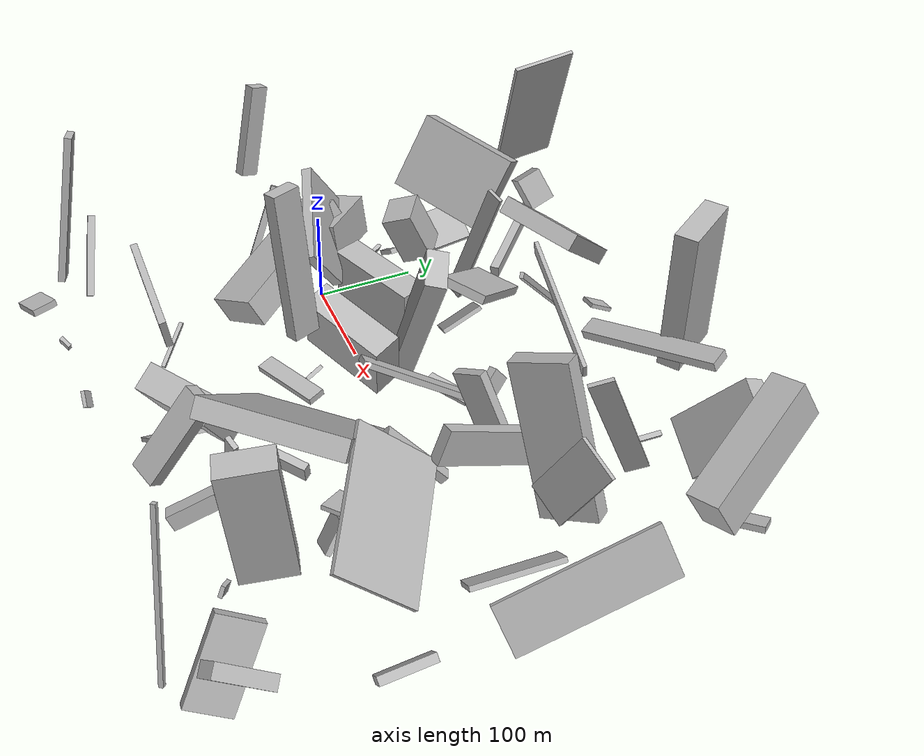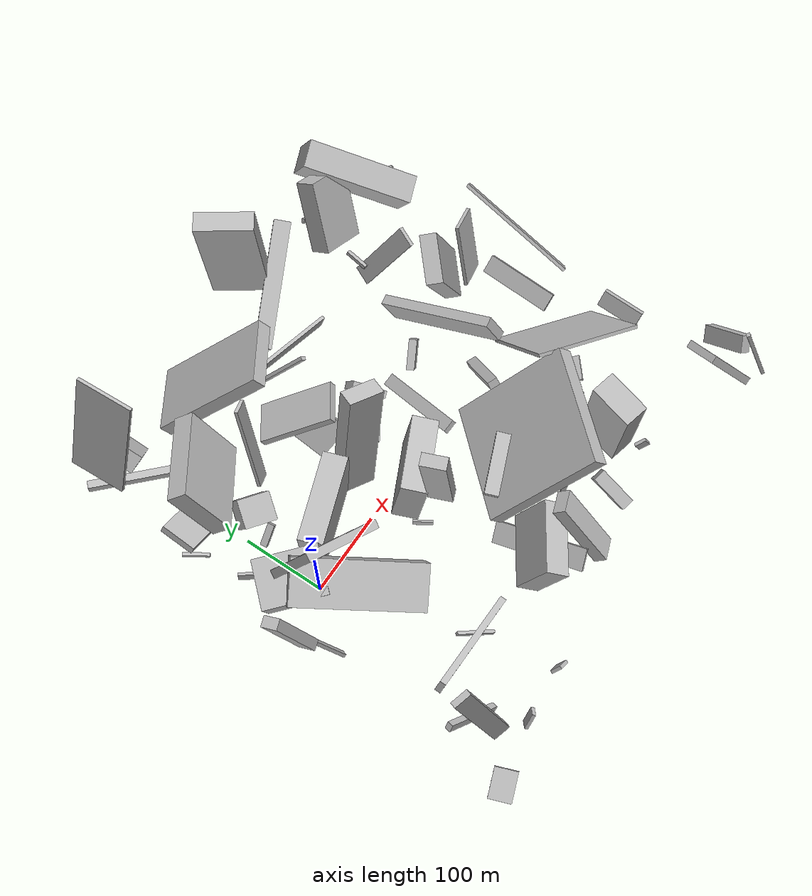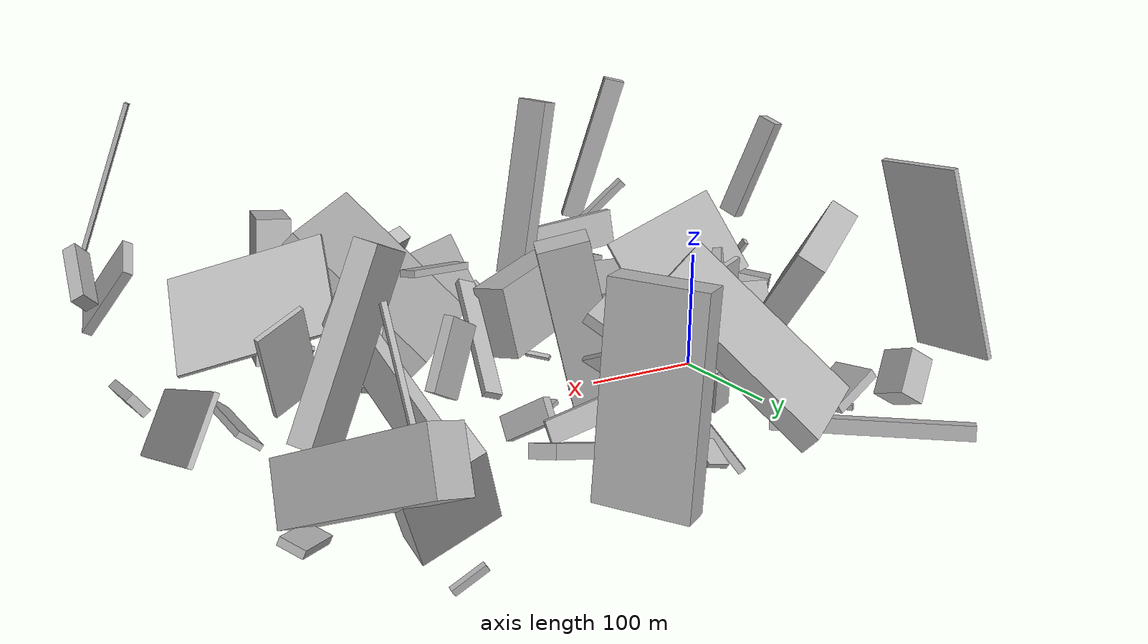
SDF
<sdf version="1.6">
 <world name="default">
  <scene>
   <sky><clouds><speed>12</speed></clouds></sky>
   <ambient>0.4 0.4 0.4 1</ambient>
   <background>0.7 0.7 0.7 1</background>
   <shadows>1</shadows>
  </scene>
  <gravity>0 0 -9.8066</gravity>
  <magnetic_field>6e-06 2.3e-05 -4.2e-05</magnetic_field>
  <physics default="0" name="default_physics" type="ode">
   <ode>
    <solver>
     <type>quick</type>
     <iters>10</iters>
     <sor>1.0</sor>
     <use_dynamic_moi_rescaling>0</use_dynamic_moi_rescaling>
    </solver>
    <constraints>
     <cfm>0</cfm>
     <erp>0.2</erp>
     <contact_max_correcting_vel>100</contact_max_correcting_vel>
     <contact_surface_layer>0.001</contact_surface_layer>
    </constraints>
   </ode>
   <max_step_size>0.004</max_step_size>
   <real_time_factor>1</real_time_factor>
   <real_time_update_rate>250</real_time_update_rate>
  </physics>
  <light name="sun" type="directional">
   <pose>0 0 10 0 0 0</pose>
   <diffuse>0.8 0.8 0.8 1</diffuse>
   <specular>0.2 0.2 0.2 1</specular>
   <attenuation>
    <range>1000</range>
    <constant>0.9</constant>
    <linear>0.01</linear>
    <quadratic>0.001</quadratic>
   </attenuation>
   <direction>-0.5 0.1 -0.9</direction>
  </light>
  <model name="building_1">
   <static>0</static>
   <pose>246.66476029185557 -103.65425606859948 92.33447510668861 2.395240058179555 0.01796044247335893 0.8364923037150247</pose>
   <link name="link">
    <gravity>0</gravity>
    <pose>0 0 10.0 0 0 0</pose>
    <collision name="collision"><geometry><box><size>138 150 20</size></box></geometry></collision>
    <visual name="visual">
     <cast_shadows>0</cast_shadows>
     <geometry><box><size>138 150 20</size></box></geometry>
     <material>
      <script>
       <uri>model://HANNAS_wall/materials/scripts</uri>
       <uri>model://HANNAS_wall/materials/textures</uri>
       <name>vrc/HANNAS_wall</name>
      </script>
     </material>
    </visual>
   </link>
  </model>
  <model name="building_2">
   <static>0</static>
   <pose>74.77353817596412 -269.41885181832254 12.850404129673592 2.7250466898283277 -0.6973093279304754 3.044578755726414</pose>
   <link name="link">
    <gravity>0</gravity>
    <pose>0 0 7.0 0 0 0</pose>
    <collision name="collision"><geometry><box><size>16 4 14</size></box></geometry></collision>
    <visual name="visual">
     <cast_shadows>0</cast_shadows>
     <geometry><box><size>16 4 14</size></box></geometry>
     <material>
      <script>
       <uri>model://HANNAS_wall/materials/scripts</uri>
       <uri>model://HANNAS_wall/materials/textures</uri>
       <name>vrc/HANNAS_wall</name>
      </script>
     </material>
    </visual>
   </link>
  </model>
  <model name="building_3">
   <static>0</static>
   <pose>54.033176676701 -104.10468295465978 53.30461732164016 -1.3280544624641228 -0.4102943487169703 0.519980831398476</pose>
   <link name="link">
    <gravity>0</gravity>
    <pose>0 0 75.0 0 0 0</pose>
    <collision name="collision"><geometry><box><size>53 31 150</size></box></geometry></collision>
    <visual name="visual">
     <cast_shadows>0</cast_shadows>
     <geometry><box><size>53 31 150</size></box></geometry>
     <material>
      <script>
       <uri>model://HANNAS_wall/materials/scripts</uri>
       <uri>model://HANNAS_wall/materials/textures</uri>
       <name>vrc/HANNAS_wall</name>
      </script>
     </material>
    </visual>
   </link>
  </model>
  <model name="building_4">
   <static>0</static>
   <pose>46.13321786835333 -174.42983850424287 27.267101739746344 1.7157436100912042 -0.5137710125623586 2.373931204698393</pose>
   <link name="link">
    <gravity>0</gravity>
    <pose>0 0 2.0 0 0 0</pose>
    <collision name="collision"><geometry><box><size>48 4 4</size></box></geometry></collision>
    <visual name="visual">
     <cast_shadows>0</cast_shadows>
     <geometry><box><size>48 4 4</size></box></geometry>
     <material>
      <script>
       <uri>model://HANNAS_wall/materials/scripts</uri>
       <uri>model://HANNAS_wall/materials/textures</uri>
       <name>vrc/HANNAS_wall</name>
      </script>
     </material>
    </visual>
   </link>
  </model>
  <model name="building_5">
   <static>0</static>
   <pose>331.78542220199364 57.98571549299594 68.5649565514665 1.8493785446122815 1.0892665302631506 -1.1613163734368508</pose>
   <link name="link">
    <gravity>0</gravity>
    <pose>0 0 6.0 0 0 0</pose>
    <collision name="collision"><geometry><box><size>34 150 12</size></box></geometry></collision>
    <visual name="visual">
     <cast_shadows>0</cast_shadows>
     <geometry><box><size>34 150 12</size></box></geometry>
     <material>
      <script>
       <uri>model://HANNAS_wall/materials/scripts</uri>
       <uri>model://HANNAS_wall/materials/textures</uri>
       <name>vrc/HANNAS_wall</name>
      </script>
     </material>
    </visual>
   </link>
  </model>
  <model name="building_6">
   <static>0</static>
   <pose>269.2276888164253 -207.45775540661407 30.305662805278786 -0.2741693387670785 -0.3964733926223789 1.440400444357317</pose>
   <link name="link">
    <gravity>0</gravity>
    <pose>0 0 8.0 0 0 0</pose>
    <collision name="collision"><geometry><box><size>47 15 16</size></box></geometry></collision>
    <visual name="visual">
     <cast_shadows>0</cast_shadows>
     <geometry><box><size>47 15 16</size></box></geometry>
     <material>
      <script>
       <uri>model://HANNAS_wall/materials/scripts</uri>
       <uri>model://HANNAS_wall/materials/textures</uri>
       <name>vrc/HANNAS_wall</name>
      </script>
     </material>
    </visual>
   </link>
  </model>
  <model name="building_7">
   <static>0</static>
   <pose>335.5125232342833 -88.1610519855105 72.46872801851823 -0.1416093183503697 -1.2182534325033438 2.399630176380705</pose>
   <link name="link">
    <gravity>0</gravity>
    <pose>0 0 15.5 0 0 0</pose>
    <collision name="collision"><geometry><box><size>4 29 31</size></box></geometry></collision>
    <visual name="visual">
     <cast_shadows>0</cast_shadows>
     <geometry><box><size>4 29 31</size></box></geometry>
     <material>
      <script>
       <uri>model://HANNAS_wall/materials/scripts</uri>
       <uri>model://HANNAS_wall/materials/textures</uri>
       <name>vrc/HANNAS_wall</name>
      </script>
     </material>
    </visual>
   </link>
  </model>
  <model name="building_8">
   <static>0</static>
   <pose>280.2547857888375 65.02004279139265 44.09961747197252 0.020110209299929366 -0.4861300850345093 0.48333065975508754</pose>
   <link name="link">
    <gravity>0</gravity>
    <pose>0 0 29.5 0 0 0</pose>
    <collision name="collision"><geometry><box><size>34 9 59</size></box></geometry></collision>
    <visual name="visual">
     <cast_shadows>0</cast_shadows>
     <geometry><box><size>34 9 59</size></box></geometry>
     <material>
      <script>
       <uri>model://HANNAS_wall/materials/scripts</uri>
       <uri>model://HANNAS_wall/materials/textures</uri>
       <name>vrc/HANNAS_wall</name>
      </script>
     </material>
    </visual>
   </link>
  </model>
  <model name="building_9">
   <static>0</static>
   <pose>339.6581105472828 -173.35220927689522 74.69091263235458 2.1236167017735887 -1.4688175564126054 -2.3678212657849773</pose>
   <link name="link">
    <gravity>0</gravity>
    <pose>0 0 14.5 0 0 0</pose>
    <collision name="collision"><geometry><box><size>127 53 29</size></box></geometry></collision>
    <visual name="visual">
     <cast_shadows>0</cast_shadows>
     <geometry><box><size>127 53 29</size></box></geometry>
     <material>
      <script>
       <uri>model://HANNAS_wall/materials/scripts</uri>
       <uri>model://HANNAS_wall/materials/textures</uri>
       <name>vrc/HANNAS_wall</name>
      </script>
     </material>
    </visual>
   </link>
  </model>
  <model name="building_10">
   <static>0</static>
   <pose>466.4478015390525 -97.83597613710272 15.080808842128356 -0.6705742297685401 0.08824328648712637 -1.5669446384571801</pose>
   <link name="link">
    <gravity>0</gravity>
    <pose>0 0 10.0 0 0 0</pose>
    <collision name="collision"><geometry><box><size>51 8 20</size></box></geometry></collision>
    <visual name="visual">
     <cast_shadows>0</cast_shadows>
     <geometry><box><size>51 8 20</size></box></geometry>
     <material>
      <script>
       <uri>model://HANNAS_wall/materials/scripts</uri>
       <uri>model://HANNAS_wall/materials/textures</uri>
       <name>vrc/HANNAS_wall</name>
      </script>
     </material>
    </visual>
   </link>
  </model>
  <model name="building_11">
   <static>0</static>
   <pose>19.91444969843269 105.809990444228 46.18622893925992 0.39711682393068487 0.11519266760348816 -0.6033528007237523</pose>
   <link name="link">
    <gravity>0</gravity>
    <pose>0 0 28.5 0 0 0</pose>
    <collision name="collision"><geometry><box><size>36 32 57</size></box></geometry></collision>
    <visual name="visual">
     <cast_shadows>0</cast_shadows>
     <geometry><box><size>36 32 57</size></box></geometry>
     <material>
      <script>
       <uri>model://HANNAS_wall/materials/scripts</uri>
       <uri>model://HANNAS_wall/materials/textures</uri>
       <name>vrc/HANNAS_wall</name>
      </script>
     </material>
    </visual>
   </link>
  </model>
  <model name="building_12">
   <static>0</static>
   <pose>384.6511678938284 -44.20783296376875 61.22568413527932 -0.7857594652452418 -0.30042265440464544 2.614841264024659</pose>
   <link name="link">
    <gravity>0</gravity>
    <pose>0 0 44.5 0 0 0</pose>
    <collision name="collision"><geometry><box><size>132 4 89</size></box></geometry></collision>
    <visual name="visual">
     <cast_shadows>0</cast_shadows>
     <geometry><box><size>132 4 89</size></box></geometry>
     <material>
      <script>
       <uri>model://HANNAS_wall/materials/scripts</uri>
       <uri>model://HANNAS_wall/materials/textures</uri>
       <name>vrc/HANNAS_wall</name>
      </script>
     </material>
    </visual>
   </link>
  </model>
  <model name="building_13">
   <static>0</static>
   <pose>459.54095628469565 -281.65843670980036 87.1634585648915 -0.33447794153078075 -0.06701825500353763 0.9008241691606634</pose>
   <link name="link">
    <gravity>0</gravity>
    <pose>0 0 75.0 0 0 0</pose>
    <collision name="collision"><geometry><box><size>4 4 150</size></box></geometry></collision>
    <visual name="visual">
     <cast_shadows>0</cast_shadows>
     <geometry><box><size>4 4 150</size></box></geometry>
     <material>
      <script>
       <uri>model://HANNAS_wall/materials/scripts</uri>
       <uri>model://HANNAS_wall/materials/textures</uri>
       <name>vrc/HANNAS_wall</name>
      </script>
     </material>
    </visual>
   </link>
  </model>
  <model name="building_14">
   <static>0</static>
   <pose>107.69148175302502 218.75549602147694 107.55568966686202 2.4146790174138064 0.16365837620429263 0.5714645750163908</pose>
   <link name="link">
    <gravity>0</gravity>
    <pose>0 0 8.5 0 0 0</pose>
    <collision name="collision"><geometry><box><size>78 150 17</size></box></geometry></collision>
    <visual name="visual">
     <cast_shadows>0</cast_shadows>
     <geometry><box><size>78 150 17</size></box></geometry>
     <material>
      <script>
       <uri>model://HANNAS_wall/materials/scripts</uri>
       <uri>model://HANNAS_wall/materials/textures</uri>
       <name>vrc/HANNAS_wall</name>
      </script>
     </material>
    </visual>
   </link>
  </model>
  <model name="building_15">
   <static>0</static>
   <pose>173.9081746929805 48.725810621113894 14.234501729359746 1.638060158210702 -0.11761477488888536 2.1526013103183854</pose>
   <link name="link">
    <gravity>0</gravity>
    <pose>0 0 23.5 0 0 0</pose>
    <collision name="collision"><geometry><box><size>14 4 47</size></box></geometry></collision>
    <visual name="visual">
     <cast_shadows>0</cast_shadows>
     <geometry><box><size>14 4 47</size></box></geometry>
     <material>
      <script>
       <uri>model://HANNAS_wall/materials/scripts</uri>
       <uri>model://HANNAS_wall/materials/textures</uri>
       <name>vrc/HANNAS_wall</name>
      </script>
     </material>
    </visual>
   </link>
  </model>
  <model name="building_16">
   <static>0</static>
   <pose>0.7219386087625979 156.26582644718172 118.23020976162405 0.38194384717968666 -1.0113073765032592 1.8461561694049489</pose>
   <link name="link">
    <gravity>0</gravity>
    <pose>0 0 11.5 0 0 0</pose>
    <collision name="collision"><geometry><box><size>79 102 23</size></box></geometry></collision>
    <visual name="visual">
     <cast_shadows>0</cast_shadows>
     <geometry><box><size>79 102 23</size></box></geometry>
     <material>
      <script>
       <uri>model://HANNAS_wall/materials/scripts</uri>
       <uri>model://HANNAS_wall/materials/textures</uri>
       <name>vrc/HANNAS_wall</name>
      </script>
     </material>
    </visual>
   </link>
  </model>
  <model name="building_17">
   <static>0</static>
   <pose>478.30494362196714 54.34486180719048 54.0425344557456 1.0805738350964587 -0.3165919418380193 1.5118062125173415</pose>
   <link name="link">
    <gravity>0</gravity>
    <pose>0 0 2.0 0 0 0</pose>
    <collision name="collision"><geometry><box><size>150 52 4</size></box></geometry></collision>
    <visual name="visual">
     <cast_shadows>0</cast_shadows>
     <geometry><box><size>150 52 4</size></box></geometry>
     <material>
      <script>
       <uri>model://HANNAS_wall/materials/scripts</uri>
       <uri>model://HANNAS_wall/materials/textures</uri>
       <name>vrc/HANNAS_wall</name>
      </script>
     </material>
    </visual>
   </link>
  </model>
  <model name="building_18">
   <static>0</static>
   <pose>253.43474458827353 174.80215127719686 48.58698057663069 -1.2996962614208196 -0.17398708331257645 1.398418140904417</pose>
   <link name="link">
    <gravity>0</gravity>
    <pose>0 0 75.0 0 0 0</pose>
    <collision name="collision"><geometry><box><size>4 18 150</size></box></geometry></collision>
    <visual name="visual">
     <cast_shadows>0</cast_shadows>
     <geometry><box><size>4 18 150</size></box></geometry>
     <material>
      <script>
       <uri>model://HANNAS_wall/materials/scripts</uri>
       <uri>model://HANNAS_wall/materials/textures</uri>
       <name>vrc/HANNAS_wall</name>
      </script>
     </material>
    </visual>
   </link>
  </model>
  <model name="building_19">
   <static>0</static>
   <pose>373.29959946506835 261.3687921250404 52.77575908394856 0.7033422713215848 -0.8831589247920273 0.8870421956006026</pose>
   <link name="link">
    <gravity>0</gravity>
    <pose>0 0 12.5 0 0 0</pose>
    <collision name="collision"><geometry><box><size>87 59 25</size></box></geometry></collision>
    <visual name="visual">
     <cast_shadows>0</cast_shadows>
     <geometry><box><size>87 59 25</size></box></geometry>
     <material>
      <script>
       <uri>model://HANNAS_wall/materials/scripts</uri>
       <uri>model://HANNAS_wall/materials/textures</uri>
       <name>vrc/HANNAS_wall</name>
      </script>
     </material>
    </visual>
   </link>
  </model>
  <model name="building_20">
   <static>0</static>
   <pose>448.58407798806036 187.77616114225813 51.81353141128477 0.6005936695055166 -1.0686768992095308 -1.7758946859695364</pose>
   <link name="link">
    <gravity>0</gravity>
    <pose>0 0 67.0 0 0 0</pose>
    <collision name="collision"><geometry><box><size>45 33 134</size></box></geometry></collision>
    <visual name="visual">
     <cast_shadows>0</cast_shadows>
     <geometry><box><size>45 33 134</size></box></geometry>
     <material>
      <script>
       <uri>model://HANNAS_wall/materials/scripts</uri>
       <uri>model://HANNAS_wall/materials/textures</uri>
       <name>vrc/HANNAS_wall</name>
      </script>
     </material>
    </visual>
   </link>
  </model>
  <model name="building_21">
   <static>0</static>
   <pose>179.52391607849668 -173.41487257055962 35.14315088907919 2.1841328892896623 -0.2559964620673173 -1.4014216695843538</pose>
   <link name="link">
    <gravity>0</gravity>
    <pose>0 0 13.0 0 0 0</pose>
    <collision name="collision"><geometry><box><size>109 4 26</size></box></geometry></collision>
    <visual name="visual">
     <cast_shadows>0</cast_shadows>
     <geometry><box><size>109 4 26</size></box></geometry>
     <material>
      <script>
       <uri>model://HANNAS_wall/materials/scripts</uri>
       <uri>model://HANNAS_wall/materials/textures</uri>
       <name>vrc/HANNAS_wall</name>
      </script>
     </material>
    </visual>
   </link>
  </model>
  <model name="building_22">
   <static>0</static>
   <pose>143.6446381004207 40.086620810979134 78.97419609836193 1.7867441812183806 -0.2427863961113169 2.68455390503627</pose>
   <link name="link">
    <gravity>0</gravity>
    <pose>0 0 10.5 0 0 0</pose>
    <collision name="collision"><geometry><box><size>42 150 21</size></box></geometry></collision>
    <visual name="visual">
     <cast_shadows>0</cast_shadows>
     <geometry><box><size>42 150 21</size></box></geometry>
     <material>
      <script>
       <uri>model://HANNAS_wall/materials/scripts</uri>
       <uri>model://HANNAS_wall/materials/textures</uri>
       <name>vrc/HANNAS_wall</name>
      </script>
     </material>
    </visual>
   </link>
  </model>
  <model name="building_23">
   <static>0</static>
   <pose>238.8539097243485 69.99469846968711 38.31561840142937 -1.0430989949831602 0.32136175572559045 3.0259838682155435</pose>
   <link name="link">
    <gravity>0</gravity>
    <pose>0 0 61.0 0 0 0</pose>
    <collision name="collision"><geometry><box><size>15 6 122</size></box></geometry></collision>
    <visual name="visual">
     <cast_shadows>0</cast_shadows>
     <geometry><box><size>15 6 122</size></box></geometry>
     <material>
      <script>
       <uri>model://HANNAS_wall/materials/scripts</uri>
       <uri>model://HANNAS_wall/materials/textures</uri>
       <name>vrc/HANNAS_wall</name>
      </script>
     </material>
    </visual>
   </link>
  </model>
  <model name="building_24">
   <static>0</static>
   <pose>108.24077021693037 151.38518683305898 55.414988217191095 -0.1897530638412343 1.0287951004328877 -1.1112932720773097</pose>
   <link name="link">
    <gravity>0</gravity>
    <pose>0 0 46.5 0 0 0</pose>
    <collision name="collision"><geometry><box><size>9 47 93</size></box></geometry></collision>
    <visual name="visual">
     <cast_shadows>0</cast_shadows>
     <geometry><box><size>9 47 93</size></box></geometry>
     <material>
      <script>
       <uri>model://HANNAS_wall/materials/scripts</uri>
       <uri>model://HANNAS_wall/materials/textures</uri>
       <name>vrc/HANNAS_wall</name>
      </script>
     </material>
    </visual>
   </link>
  </model>
  <model name="building_25">
   <static>0</static>
   <pose>215.2042075571859 -203.84907626143175 60.21935549740173 1.305421047412368 -0.6217858047400504 -1.0713671297707137</pose>
   <link name="link">
    <gravity>0</gravity>
    <pose>0 0 14.0 0 0 0</pose>
    <collision name="collision"><geometry><box><size>15 94 28</size></box></geometry></collision>
    <visual name="visual">
     <cast_shadows>0</cast_shadows>
     <geometry><box><size>15 94 28</size></box></geometry>
     <material>
      <script>
       <uri>model://HANNAS_wall/materials/scripts</uri>
       <uri>model://HANNAS_wall/materials/textures</uri>
       <name>vrc/HANNAS_wall</name>
      </script>
     </material>
    </visual>
   </link>
  </model>
  <model name="building_26">
   <static>0</static>
   <pose>149.7189053602257 180.07817222793858 62.00442182975848 0.8499244868905895 0.1814182246058715 -2.3047326304352214</pose>
   <link name="link">
    <gravity>0</gravity>
    <pose>0 0 3.0 0 0 0</pose>
    <collision name="collision"><geometry><box><size>4 150 6</size></box></geometry></collision>
    <visual name="visual">
     <cast_shadows>0</cast_shadows>
     <geometry><box><size>4 150 6</size></box></geometry>
     <material>
      <script>
       <uri>model://HANNAS_wall/materials/scripts</uri>
       <uri>model://HANNAS_wall/materials/textures</uri>
       <name>vrc/HANNAS_wall</name>
      </script>
     </material>
    </visual>
   </link>
  </model>
  <model name="building_27">
   <static>0</static>
   <pose>66.06404234141264 138.42662404628433 81.74987372458992 1.7850592237257192 0.17243951089104914 1.8821285960208336</pose>
   <link name="link">
    <gravity>0</gravity>
    <pose>0 0 9.0 0 0 0</pose>
    <collision name="collision"><geometry><box><size>4 135 18</size></box></geometry></collision>
    <visual name="visual">
     <cast_shadows>0</cast_shadows>
     <geometry><box><size>4 135 18</size></box></geometry>
     <material>
      <script>
       <uri>model://HANNAS_wall/materials/scripts</uri>
       <uri>model://HANNAS_wall/materials/textures</uri>
       <name>vrc/HANNAS_wall</name>
      </script>
     </material>
    </visual>
   </link>
  </model>
  <model name="building_28">
   <static>0</static>
   <pose>21.84274081475692 -178.24489270822113 75.91843652387564 2.4877128695888895 -1.4089053250556691 -0.9307238284913604</pose>
   <link name="link">
    <gravity>0</gravity>
    <pose>0 0 3.5 0 0 0</pose>
    <collision name="collision"><geometry><box><size>34 114 7</size></box></geometry></collision>
    <visual name="visual">
     <cast_shadows>0</cast_shadows>
     <geometry><box><size>34 114 7</size></box></geometry>
     <material>
      <script>
       <uri>model://HANNAS_wall/materials/scripts</uri>
       <uri>model://HANNAS_wall/materials/textures</uri>
       <name>vrc/HANNAS_wall</name>
      </script>
     </material>
    </visual>
   </link>
  </model>
  <model name="building_29">
   <static>0</static>
   <pose>248.51122514634966 -140.5116666435523 26.13320049093103 -2.1522074001211817 1.2951542782233718 1.410569703028077</pose>
   <link name="link">
    <gravity>0</gravity>
    <pose>0 0 8.5 0 0 0</pose>
    <collision name="collision"><geometry><box><size>19 4 17</size></box></geometry></collision>
    <visual name="visual">
     <cast_shadows>0</cast_shadows>
     <geometry><box><size>19 4 17</size></box></geometry>
     <material>
      <script>
       <uri>model://HANNAS_wall/materials/scripts</uri>
       <uri>model://HANNAS_wall/materials/textures</uri>
       <name>vrc/HANNAS_wall</name>
      </script>
     </material>
    </visual>
   </link>
  </model>
  <model name="building_30">
   <static>0</static>
   <pose>369.9666619484426 277.85753020241543 11.983158097427399 0.2561574138699274 -0.5808306676079564 2.9171299371128505</pose>
   <link name="link">
    <gravity>0</gravity>
    <pose>0 0 3.0 0 0 0</pose>
    <collision name="collision"><geometry><box><size>26 4 6</size></box></geometry></collision>
    <visual name="visual">
     <cast_shadows>0</cast_shadows>
     <geometry><box><size>26 4 6</size></box></geometry>
     <material>
      <script>
       <uri>model://HANNAS_wall/materials/scripts</uri>
       <uri>model://HANNAS_wall/materials/textures</uri>
       <name>vrc/HANNAS_wall</name>
      </script>
     </material>
    </visual>
   </link>
  </model>
  <model name="building_31">
   <static>0</static>
   <pose>343.65718198105117 189.07943461216942 41.13728931030087 -0.12728048268589723 -0.38804794659378716 3.0627411692530764</pose>
   <link name="link">
    <gravity>0</gravity>
    <pose>0 0 2.0 0 0 0</pose>
    <collision name="collision"><geometry><box><size>5 28 4</size></box></geometry></collision>
    <visual name="visual">
     <cast_shadows>0</cast_shadows>
     <geometry><box><size>5 28 4</size></box></geometry>
     <material>
      <script>
       <uri>model://HANNAS_wall/materials/scripts</uri>
       <uri>model://HANNAS_wall/materials/textures</uri>
       <name>vrc/HANNAS_wall</name>
      </script>
     </material>
    </visual>
   </link>
  </model>
  <model name="building_32">
   <static>0</static>
   <pose>65.1521707648773 54.317927016411545 44.396816709312844 -1.5674294649547575 0.04193204227412284 -2.8009903461083487</pose>
   <link name="link">
    <gravity>0</gravity>
    <pose>0 0 14.5 0 0 0</pose>
    <collision name="collision"><geometry><box><size>104 63 29</size></box></geometry></collision>
    <visual name="visual">
     <cast_shadows>0</cast_shadows>
     <geometry><box><size>104 63 29</size></box></geometry>
     <material>
      <script>
       <uri>model://HANNAS_wall/materials/scripts</uri>
       <uri>model://HANNAS_wall/materials/textures</uri>
       <name>vrc/HANNAS_wall</name>
      </script>
     </material>
    </visual>
   </link>
  </model>
  <model name="building_33">
   <static>0</static>
   <pose>190.2216945614959 214.0672306791289 38.32691862008527 -0.5511704936646415 -1.192189371240828 -2.1184496395323187</pose>
   <link name="link">
    <gravity>0</gravity>
    <pose>0 0 75.0 0 0 0</pose>
    <collision name="collision"><geometry><box><size>10 20 150</size></box></geometry></collision>
    <visual name="visual">
     <cast_shadows>0</cast_shadows>
     <geometry><box><size>10 20 150</size></box></geometry>
     <material>
      <script>
       <uri>model://HANNAS_wall/materials/scripts</uri>
       <uri>model://HANNAS_wall/materials/textures</uri>
       <name>vrc/HANNAS_wall</name>
      </script>
     </material>
    </visual>
   </link>
  </model>
  <model name="building_34">
   <static>0</static>
   <pose>231.4015328804004 -166.355111411012 40.19804675948164 -0.30208199344175957 0.08892809332302783 -1.290915188094294</pose>
   <link name="link">
    <gravity>0</gravity>
    <pose>0 0 20.5 0 0 0</pose>
    <collision name="collision"><geometry><box><size>5 14 41</size></box></geometry></collision>
    <visual name="visual">
     <cast_shadows>0</cast_shadows>
     <geometry><box><size>5 14 41</size></box></geometry>
     <material>
      <script>
       <uri>model://HANNAS_wall/materials/scripts</uri>
       <uri>model://HANNAS_wall/materials/textures</uri>
       <name>vrc/HANNAS_wall</name>
      </script>
     </material>
    </visual>
   </link>
  </model>
  <model name="building_35">
   <static>0</static>
   <pose>-1.4414876109117993 72.3572125199169 35.30293721434637 0.044549527203954914 -0.9161922382342771 -3.0619563861614476</pose>
   <link name="link">
    <gravity>0</gravity>
    <pose>0 0 13.5 0 0 0</pose>
    <collision name="collision"><geometry><box><size>5 8 27</size></box></geometry></collision>
    <visual name="visual">
     <cast_shadows>0</cast_shadows>
     <geometry><box><size>5 8 27</size></box></geometry>
     <material>
      <script>
       <uri>model://HANNAS_wall/materials/scripts</uri>
       <uri>model://HANNAS_wall/materials/textures</uri>
       <name>vrc/HANNAS_wall</name>
      </script>
     </material>
    </visual>
   </link>
  </model>
  <model name="building_36">
   <static>0</static>
   <pose>141.50553082055666 -65.76876630459402 86.54279652812204 0.1611043350885275 -0.030427464206753498 -1.1971365308436728</pose>
   <link name="link">
    <gravity>0</gravity>
    <pose>0 0 75.0 0 0 0</pose>
    <collision name="collision"><geometry><box><size>28 14 150</size></box></geometry></collision>
    <visual name="visual">
     <cast_shadows>0</cast_shadows>
     <geometry><box><size>28 14 150</size></box></geometry>
     <material>
      <script>
       <uri>model://HANNAS_wall/materials/scripts</uri>
       <uri>model://HANNAS_wall/materials/textures</uri>
       <name>vrc/HANNAS_wall</name>
      </script>
     </material>
    </visual>
   </link>
  </model>
  <model name="building_37">
   <static>0</static>
   <pose>56.93063852337265 -15.07637380036389 79.73212140358756 0.6208306101366895 -0.9804212479592513 -1.0329862826419125</pose>
   <link name="link">
    <gravity>0</gravity>
    <pose>0 0 48.5 0 0 0</pose>
    <collision name="collision"><geometry><box><size>75 10 97</size></box></geometry></collision>
    <visual name="visual">
     <cast_shadows>0</cast_shadows>
     <geometry><box><size>75 10 97</size></box></geometry>
     <material>
      <script>
       <uri>model://HANNAS_wall/materials/scripts</uri>
       <uri>model://HANNAS_wall/materials/textures</uri>
       <name>vrc/HANNAS_wall</name>
      </script>
     </material>
    </visual>
   </link>
  </model>
  <model name="building_38">
   <static>0</static>
   <pose>-76.17510857464285 -272.9974305410641 21.17981837490895 1.5815161757109908 -0.29643700209483576 0.35056035379077677</pose>
   <link name="link">
    <gravity>0</gravity>
    <pose>0 0 13.0 0 0 0</pose>
    <collision name="collision"><geometry><box><size>34 7 26</size></box></geometry></collision>
    <visual name="visual">
     <cast_shadows>0</cast_shadows>
     <geometry><box><size>34 7 26</size></box></geometry>
     <material>
      <script>
       <uri>model://HANNAS_wall/materials/scripts</uri>
       <uri>model://HANNAS_wall/materials/textures</uri>
       <name>vrc/HANNAS_wall</name>
      </script>
     </material>
    </visual>
   </link>
  </model>
  <model name="building_39">
   <static>0</static>
   <pose>429.86130397717596 16.01841638786893 33.045174371447025 -0.6658551938109771 -0.02007674614512744 1.52386988076845</pose>
   <link name="link">
    <gravity>0</gravity>
    <pose>0 0 2.5 0 0 0</pose>
    <collision name="collision"><geometry><box><size>87 22 5</size></box></geometry></collision>
    <visual name="visual">
     <cast_shadows>0</cast_shadows>
     <geometry><box><size>87 22 5</size></box></geometry>
     <material>
      <script>
       <uri>model://HANNAS_wall/materials/scripts</uri>
       <uri>model://HANNAS_wall/materials/textures</uri>
       <name>vrc/HANNAS_wall</name>
      </script>
     </material>
    </visual>
   </link>
  </model>
  <model name="building_40">
   <static>0</static>
   <pose>-48.11777982307012 40.83078251877747 63.73433372351296 1.4251103320201037 -0.20128998732587175 0.8317119951364089</pose>
   <link name="link">
    <gravity>0</gravity>
    <pose>0 0 37.0 0 0 0</pose>
    <collision name="collision"><geometry><box><size>56 41 74</size></box></geometry></collision>
    <visual name="visual">
     <cast_shadows>0</cast_shadows>
     <geometry><box><size>56 41 74</size></box></geometry>
     <material>
      <script>
       <uri>model://HANNAS_wall/materials/scripts</uri>
       <uri>model://HANNAS_wall/materials/textures</uri>
       <name>vrc/HANNAS_wall</name>
      </script>
     </material>
    </visual>
   </link>
  </model>
  <model name="building_41">
   <static>0</static>
   <pose>256.70889926026894 -119.14910721812588 38.7662874729519 -0.17617588703012332 -0.06190672078958601 -2.468405229836881</pose>
   <link name="link">
    <gravity>0</gravity>
    <pose>0 0 8.5 0 0 0</pose>
    <collision name="collision"><geometry><box><size>36 8 17</size></box></geometry></collision>
    <visual name="visual">
     <cast_shadows>0</cast_shadows>
     <geometry><box><size>36 8 17</size></box></geometry>
     <material>
      <script>
       <uri>model://HANNAS_wall/materials/scripts</uri>
       <uri>model://HANNAS_wall/materials/textures</uri>
       <name>vrc/HANNAS_wall</name>
      </script>
     </material>
    </visual>
   </link>
  </model>
  <model name="building_42">
   <static>0</static>
   <pose>-37.05694006241783 -256.49197858927505 74.99354756861284 0.1727964726527417 0.2392482008996725 2.8245572055762227</pose>
   <link name="link">
    <gravity>0</gravity>
    <pose>0 0 75.0 0 0 0</pose>
    <collision name="collision"><geometry><box><size>20 7 150</size></box></geometry></collision>
    <visual name="visual">
     <cast_shadows>0</cast_shadows>
     <geometry><box><size>20 7 150</size></box></geometry>
     <material>
      <script>
       <uri>model://HANNAS_wall/materials/scripts</uri>
       <uri>model://HANNAS_wall/materials/textures</uri>
       <name>vrc/HANNAS_wall</name>
      </script>
     </material>
    </visual>
   </link>
  </model>
  <model name="building_43">
   <static>0</static>
   <pose>127.3383330867531 -205.03359708593854 55.256961761868055 1.5785105365554182 1.0485869782212565 2.1615566358273095</pose>
   <link name="link">
    <gravity>0</gravity>
    <pose>0 0 41.0 0 0 0</pose>
    <collision name="collision"><geometry><box><size>59 28 82</size></box></geometry></collision>
    <visual name="visual">
     <cast_shadows>0</cast_shadows>
     <geometry><box><size>59 28 82</size></box></geometry>
     <material>
      <script>
       <uri>model://HANNAS_wall/materials/scripts</uri>
       <uri>model://HANNAS_wall/materials/textures</uri>
       <name>vrc/HANNAS_wall</name>
      </script>
     </material>
    </visual>
   </link>
  </model>
  <model name="building_44">
   <static>0</static>
   <pose>198.63458301516326 -90.6400520955185 91.89045429459236 1.7060756678769295 -0.11316853933829196 0.3826093227536453</pose>
   <link name="link">
    <gravity>0</gravity>
    <pose>0 0 8.0 0 0 0</pose>
    <collision name="collision"><geometry><box><size>71 6 16</size></box></geometry></collision>
    <visual name="visual">
     <cast_shadows>0</cast_shadows>
     <geometry><box><size>71 6 16</size></box></geometry>
     <material>
      <script>
       <uri>model://HANNAS_wall/materials/scripts</uri>
       <uri>model://HANNAS_wall/materials/textures</uri>
       <name>vrc/HANNAS_wall</name>
      </script>
     </material>
    </visual>
   </link>
  </model>
  <model name="building_45">
   <static>0</static>
   <pose>-31.236371256253843 177.17493805592278 27.60374058991894 1.8556853770396635 -0.9723640201715589 -0.2563708774695834</pose>
   <link name="link">
    <gravity>0</gravity>
    <pose>0 0 21.0 0 0 0</pose>
    <collision name="collision"><geometry><box><size>8 43 42</size></box></geometry></collision>
    <visual name="visual">
     <cast_shadows>0</cast_shadows>
     <geometry><box><size>8 43 42</size></box></geometry>
     <material>
      <script>
       <uri>model://HANNAS_wall/materials/scripts</uri>
       <uri>model://HANNAS_wall/materials/textures</uri>
       <name>vrc/HANNAS_wall</name>
      </script>
     </material>
    </visual>
   </link>
  </model>
  <model name="building_46">
   <static>0</static>
   <pose>-40.790856306614984 81.55142367371344 10.362805577436884 -1.531340407954677 -0.35857538267471345 -2.5125876695546414</pose>
   <link name="link">
    <gravity>0</gravity>
    <pose>0 0 38.0 0 0 0</pose>
    <collision name="collision"><geometry><box><size>4 8 76</size></box></geometry></collision>
    <visual name="visual">
     <cast_shadows>0</cast_shadows>
     <geometry><box><size>4 8 76</size></box></geometry>
     <material>
      <script>
       <uri>model://HANNAS_wall/materials/scripts</uri>
       <uri>model://HANNAS_wall/materials/textures</uri>
       <name>vrc/HANNAS_wall</name>
      </script>
     </material>
    </visual>
   </link>
  </model>
  <model name="building_47">
   <static>0</static>
   <pose>319.601144182243 -108.52160686815046 26.068707719979333 0.8076874087198479 -0.7916705863877124 2.1018053826559724</pose>
   <link name="link">
    <gravity>0</gravity>
    <pose>0 0 16.0 0 0 0</pose>
    <collision name="collision"><geometry><box><size>31 5 32</size></box></geometry></collision>
    <visual name="visual">
     <cast_shadows>0</cast_shadows>
     <geometry><box><size>31 5 32</size></box></geometry>
     <material>
      <script>
       <uri>model://HANNAS_wall/materials/scripts</uri>
       <uri>model://HANNAS_wall/materials/textures</uri>
       <name>vrc/HANNAS_wall</name>
      </script>
     </material>
    </visual>
   </link>
  </model>
  <model name="building_48">
   <static>0</static>
   <pose>-17.272377371515493 -236.03514245157075 59.86016083563268 -0.2945626927668446 -0.755757793599057 0.0434307576254024</pose>
   <link name="link">
    <gravity>0</gravity>
    <pose>0 0 40.0 0 0 0</pose>
    <collision name="collision"><geometry><box><size>8 7 80</size></box></geometry></collision>
    <visual name="visual">
     <cast_shadows>0</cast_shadows>
     <geometry><box><size>8 7 80</size></box></geometry>
     <material>
      <script>
       <uri>model://HANNAS_wall/materials/scripts</uri>
       <uri>model://HANNAS_wall/materials/textures</uri>
       <name>vrc/HANNAS_wall</name>
      </script>
     </material>
    </visual>
   </link>
  </model>
  <model name="building_49">
   <static>0</static>
   <pose>262.6226790531217 258.40520702875733 112.30092905522321 1.60130107629107 0.04836372484443006 -2.5534572154431645</pose>
   <link name="link">
    <gravity>0</gravity>
    <pose>0 0 33.5 0 0 0</pose>
    <collision name="collision"><geometry><box><size>23 150 67</size></box></geometry></collision>
    <visual name="visual">
     <cast_shadows>0</cast_shadows>
     <geometry><box><size>23 150 67</size></box></geometry>
     <material>
      <script>
       <uri>model://HANNAS_wall/materials/scripts</uri>
       <uri>model://HANNAS_wall/materials/textures</uri>
       <name>vrc/HANNAS_wall</name>
      </script>
     </material>
    </visual>
   </link>
  </model>
  <model name="building_50">
   <static>0</static>
   <pose>-79.42565612023203 -50.390487914138596 118.3487018464599 0.146555683636091 -0.316797283135783 -1.3029850402368617</pose>
   <link name="link">
    <gravity>0</gravity>
    <pose>0 0 46.5 0 0 0</pose>
    <collision name="collision"><geometry><box><size>18 12 93</size></box></geometry></collision>
    <visual name="visual">
     <cast_shadows>0</cast_shadows>
     <geometry><box><size>18 12 93</size></box></geometry>
     <material>
      <script>
       <uri>model://HANNAS_wall/materials/scripts</uri>
       <uri>model://HANNAS_wall/materials/textures</uri>
       <name>vrc/HANNAS_wall</name>
      </script>
     </material>
    </visual>
   </link>
  </model>
  <model name="building_51">
   <static>0</static>
   <pose>-48.15825162053725 255.01587064182368 83.25481061763242 0.07105185824495751 0.29295489544892106 0.08348004114562627</pose>
   <link name="link">
    <gravity>0</gravity>
    <pose>0 0 75.0 0 0 0</pose>
    <collision name="collision"><geometry><box><size>4 65 150</size></box></geometry></collision>
    <visual name="visual">
     <cast_shadows>0</cast_shadows>
     <geometry><box><size>4 65 150</size></box></geometry>
     <material>
      <script>
       <uri>model://HANNAS_wall/materials/scripts</uri>
       <uri>model://HANNAS_wall/materials/textures</uri>
       <name>vrc/HANNAS_wall</name>
      </script>
     </material>
    </visual>
   </link>
  </model>
  <model name="building_52">
   <static>0</static>
   <pose>394.29096269958376 61.15982230764319 60.82121108060014 0.29635491721734014 -0.38742721855910633 -2.911135752809108</pose>
   <link name="link">
    <gravity>0</gravity>
    <pose>0 0 39.0 0 0 0</pose>
    <collision name="collision"><geometry><box><size>41 4 78</size></box></geometry></collision>
    <visual name="visual">
     <cast_shadows>0</cast_shadows>
     <geometry><box><size>41 4 78</size></box></geometry>
     <material>
      <script>
       <uri>model://HANNAS_wall/materials/scripts</uri>
       <uri>model://HANNAS_wall/materials/textures</uri>
       <name>vrc/HANNAS_wall</name>
      </script>
     </material>
    </visual>
   </link>
  </model>
  <model name="building_53">
   <static>0</static>
   <pose>-63.61762238582141 -43.706519266740635 54.414458996937995 0.7552685364313177 -1.0296998892065865 2.121595109835409</pose>
   <link name="link">
    <gravity>0</gravity>
    <pose>0 0 2.0 0 0 0</pose>
    <collision name="collision"><geometry><box><size>99 7 4</size></box></geometry></collision>
    <visual name="visual">
     <cast_shadows>0</cast_shadows>
     <geometry><box><size>99 7 4</size></box></geometry>
     <material>
      <script>
       <uri>model://HANNAS_wall/materials/scripts</uri>
       <uri>model://HANNAS_wall/materials/textures</uri>
       <name>vrc/HANNAS_wall</name>
      </script>
     </material>
    </visual>
   </link>
  </model>
  <model name="building_54">
   <static>0</static>
   <pose>-44.659736893660316 138.15401577665523 3.589244537201164 -3.1274262413725906 -0.007564796234794232 2.136494707506792</pose>
   <link name="link">
    <gravity>0</gravity>
    <pose>0 0 2.5 0 0 0</pose>
    <collision name="collision"><geometry><box><size>31 4 5</size></box></geometry></collision>
    <visual name="visual">
     <cast_shadows>0</cast_shadows>
     <geometry><box><size>31 4 5</size></box></geometry>
     <material>
      <script>
       <uri>model://HANNAS_wall/materials/scripts</uri>
       <uri>model://HANNAS_wall/materials/textures</uri>
       <name>vrc/HANNAS_wall</name>
      </script>
     </material>
    </visual>
   </link>
  </model>
  <model name="building_55">
   <static>0</static>
   <pose>140.9664767059838 96.67260658853549 48.52406110076262 0.5213139411735382 -0.6229830999534871 -0.2883058800595579</pose>
   <link name="link">
    <gravity>0</gravity>
    <pose>0 0 2.0 0 0 0</pose>
    <collision name="collision"><geometry><box><size>46 43 4</size></box></geometry></collision>
    <visual name="visual">
     <cast_shadows>0</cast_shadows>
     <geometry><box><size>46 43 4</size></box></geometry>
     <material>
      <script>
       <uri>model://HANNAS_wall/materials/scripts</uri>
       <uri>model://HANNAS_wall/materials/textures</uri>
       <name>vrc/HANNAS_wall</name>
      </script>
     </material>
    </visual>
   </link>
  </model>
  <model name="building_56">
   <static>0</static>
   <pose>4.5631792055992095 231.0107712753536 22.787915485345422 2.4475814267037386 -1.5078561617667992 -1.6379674215992093</pose>
   <link name="link">
    <gravity>0</gravity>
    <pose>0 0 4.5 0 0 0</pose>
    <collision name="collision"><geometry><box><size>12 150 9</size></box></geometry></collision>
    <visual name="visual">
     <cast_shadows>0</cast_shadows>
     <geometry><box><size>12 150 9</size></box></geometry>
     <material>
      <script>
       <uri>model://HANNAS_wall/materials/scripts</uri>
       <uri>model://HANNAS_wall/materials/textures</uri>
       <name>vrc/HANNAS_wall</name>
      </script>
     </material>
    </visual>
   </link>
  </model>
  <model name="building_57">
   <static>0</static>
   <pose>152.9721983320268 239.39515839975303 36.54722499886262 -1.3205945756111197 -0.4561814071383823 -1.682390958422773</pose>
   <link name="link">
    <gravity>0</gravity>
    <pose>0 0 9.0 0 0 0</pose>
    <collision name="collision"><geometry><box><size>24 4 18</size></box></geometry></collision>
    <visual name="visual">
     <cast_shadows>0</cast_shadows>
     <geometry><box><size>24 4 18</size></box></geometry>
     <material>
      <script>
       <uri>model://HANNAS_wall/materials/scripts</uri>
       <uri>model://HANNAS_wall/materials/textures</uri>
       <name>vrc/HANNAS_wall</name>
      </script>
     </material>
    </visual>
   </link>
  </model>
  <model name="building_58">
   <static>0</static>
   <pose>2.9370947767118887 -272.2972115256197 23.421063360991127 -1.0075710886213456 -0.867803763984536 -0.01938985299178111</pose>
   <link name="link">
    <gravity>0</gravity>
    <pose>0 0 2.0 0 0 0</pose>
    <collision name="collision"><geometry><box><size>21 12 4</size></box></geometry></collision>
    <visual name="visual">
     <cast_shadows>0</cast_shadows>
     <geometry><box><size>21 12 4</size></box></geometry>
     <material>
      <script>
       <uri>model://HANNAS_wall/materials/scripts</uri>
       <uri>model://HANNAS_wall/materials/textures</uri>
       <name>vrc/HANNAS_wall</name>
      </script>
     </material>
    </visual>
   </link>
  </model>
  <model name="building_59">
   <static>0</static>
   <pose>348.70760404369423 154.02678404418543 76.58156148852989 1.7620223754609659 -0.3617626808309539 1.2044314692737328</pose>
   <link name="link">
    <gravity>0</gravity>
    <pose>0 0 2.0 0 0 0</pose>
    <collision name="collision"><geometry><box><size>23 150 4</size></box></geometry></collision>
    <visual name="visual">
     <cast_shadows>0</cast_shadows>
     <geometry><box><size>23 150 4</size></box></geometry>
     <material>
      <script>
       <uri>model://HANNAS_wall/materials/scripts</uri>
       <uri>model://HANNAS_wall/materials/textures</uri>
       <name>vrc/HANNAS_wall</name>
      </script>
     </material>
    </visual>
   </link>
  </model>
  <model name="building_60">
   <static>0</static>
   <pose>455.0975082756227 -216.7184362766297 65.21512268342367 -0.8118602992196192 -0.8953192178908238 2.2007253078856657</pose>
   <link name="link">
    <gravity>0</gravity>
    <pose>0 0 20.5 0 0 0</pose>
    <collision name="collision"><geometry><box><size>78 9 41</size></box></geometry></collision>
    <visual name="visual">
     <cast_shadows>0</cast_shadows>
     <geometry><box><size>78 9 41</size></box></geometry>
     <material>
      <script>
       <uri>model://HANNAS_wall/materials/scripts</uri>
       <uri>model://HANNAS_wall/materials/textures</uri>
       <name>vrc/HANNAS_wall</name>
      </script>
     </material>
    </visual>
   </link>
  </model>
  <model name="building_61">
   <static>0</static>
   <pose>-15.060716336350772 249.81077939845218 61.971018410495674 0.9796735651997269 -0.338449929274819 1.6463353985479996</pose>
   <link name="link">
    <gravity>0</gravity>
    <pose>0 0 11.0 0 0 0</pose>
    <collision name="collision"><geometry><box><size>27 35 22</size></box></geometry></collision>
    <visual name="visual">
     <cast_shadows>0</cast_shadows>
     <geometry><box><size>27 35 22</size></box></geometry>
     <material>
      <script>
       <uri>model://HANNAS_wall/materials/scripts</uri>
       <uri>model://HANNAS_wall/materials/textures</uri>
       <name>vrc/HANNAS_wall</name>
      </script>
     </material>
    </visual>
   </link>
  </model>
  <model name="building_62">
   <static>0</static>
   <pose>468.79783170400634 234.25898955609003 39.36529621685455 1.7674467404661842 -0.3216502729148992 -0.9141107221952927</pose>
   <link name="link">
    <gravity>0</gravity>
    <pose>0 0 18.5 0 0 0</pose>
    <collision name="collision"><geometry><box><size>19 6 37</size></box></geometry></collision>
    <visual name="visual">
     <cast_shadows>0</cast_shadows>
     <geometry><box><size>19 6 37</size></box></geometry>
     <material>
      <script>
       <uri>model://HANNAS_wall/materials/scripts</uri>
       <uri>model://HANNAS_wall/materials/textures</uri>
       <name>vrc/HANNAS_wall</name>
      </script>
     </material>
    </visual>
   </link>
  </model>
  <model name="building_63">
   <static>0</static>
   <pose>223.22831159376344 91.67291113640186 23.422030584645277 2.048639548968544 -0.9344830516405749 -1.611472530878259</pose>
   <link name="link">
    <gravity>0</gravity>
    <pose>0 0 4.5 0 0 0</pose>
    <collision name="collision"><geometry><box><size>20 44 9</size></box></geometry></collision>
    <visual name="visual">
     <cast_shadows>0</cast_shadows>
     <geometry><box><size>20 44 9</size></box></geometry>
     <material>
      <script>
       <uri>model://HANNAS_wall/materials/scripts</uri>
       <uri>model://HANNAS_wall/materials/textures</uri>
       <name>vrc/HANNAS_wall</name>
      </script>
     </material>
    </visual>
   </link>
  </model>
  <model name="building_64">
   <static>0</static>
   <pose>336.6517678184482 -203.65675609034585 12.263603741196615 -0.36110252915929714 1.0336743186288666 -1.0530487854004191</pose>
   <link name="link">
    <gravity>0</gravity>
    <pose>0 0 7.0 0 0 0</pose>
    <collision name="collision"><geometry><box><size>11 4 14</size></box></geometry></collision>
    <visual name="visual">
     <cast_shadows>0</cast_shadows>
     <geometry><box><size>11 4 14</size></box></geometry>
     <material>
      <script>
       <uri>model://HANNAS_wall/materials/scripts</uri>
       <uri>model://HANNAS_wall/materials/textures</uri>
       <name>vrc/HANNAS_wall</name>
      </script>
     </material>
    </visual>
   </link>
  </model>
  <model name="building_65">
   <static>0</static>
   <pose>382.59832958613765 100.837925506658 113.01531026183373 -2.6393281997082654 -1.1548030444677886 -2.9394727178862006</pose>
   <link name="link">
    <gravity>0</gravity>
    <pose>0 0 27.5 0 0 0</pose>
    <collision name="collision"><geometry><box><size>150 19 55</size></box></geometry></collision>
    <visual name="visual">
     <cast_shadows>0</cast_shadows>
     <geometry><box><size>150 19 55</size></box></geometry>
     <material>
      <script>
       <uri>model://HANNAS_wall/materials/scripts</uri>
       <uri>model://HANNAS_wall/materials/textures</uri>
       <name>vrc/HANNAS_wall</name>
      </script>
     </material>
    </visual>
   </link>
  </model>
  <model name="building_66">
   <static>0</static>
   <pose>312.3808073409876 4.972810304957857 33.939144452124246 0.21549311464013315 0.8303373337252369 -1.8430024661589686</pose>
   <link name="link">
    <gravity>0</gravity>
    <pose>0 0 35.5 0 0 0</pose>
    <collision name="collision"><geometry><box><size>9 12 71</size></box></geometry></collision>
    <visual name="visual">
     <cast_shadows>0</cast_shadows>
     <geometry><box><size>9 12 71</size></box></geometry>
     <material>
      <script>
       <uri>model://HANNAS_wall/materials/scripts</uri>
       <uri>model://HANNAS_wall/materials/textures</uri>
       <name>vrc/HANNAS_wall</name>
      </script>
     </material>
    </visual>
   </link>
  </model>
  <model name="building_67">
   <static>0</static>
   <pose>148.33252686454097 -19.892322969744715 45.0759025685787 -0.16057404621885835 -0.14525707911499444 -2.6875832334824397</pose>
   <link name="link">
    <gravity>0</gravity>
    <pose>0 0 30.5 0 0 0</pose>
    <collision name="collision"><geometry><box><size>92 30 61</size></box></geometry></collision>
    <visual name="visual">
     <cast_shadows>0</cast_shadows>
     <geometry><box><size>92 30 61</size></box></geometry>
     <material>
      <script>
       <uri>model://HANNAS_wall/materials/scripts</uri>
       <uri>model://HANNAS_wall/materials/textures</uri>
       <name>vrc/HANNAS_wall</name>
      </script>
     </material>
    </visual>
   </link>
  </model>
  <model name="building_68">
   <static>0</static>
   <pose>476.3415412887163 -206.0350144320173 72.4449878514764 -0.8206090332560815 -0.5293055672596254 2.5626132399359793</pose>
   <link name="link">
    <gravity>0</gravity>
    <pose>0 0 28.0 0 0 0</pose>
    <collision name="collision"><geometry><box><size>13 20 56</size></box></geometry></collision>
    <visual name="visual">
     <cast_shadows>0</cast_shadows>
     <geometry><box><size>13 20 56</size></box></geometry>
     <material>
      <script>
       <uri>model://HANNAS_wall/materials/scripts</uri>
       <uri>model://HANNAS_wall/materials/textures</uri>
       <name>vrc/HANNAS_wall</name>
      </script>
     </material>
    </visual>
   </link>
  </model>
  <model name="building_69">
   <static>0</static>
   <pose>123.49804854117828 -53.21588427208509 11.729668842340383 -0.616684496461674 -0.02216283879252166 -1.0066517856456263</pose>
   <link name="link">
    <gravity>0</gravity>
    <pose>0 0 2.0 0 0 0</pose>
    <collision name="collision"><geometry><box><size>23 4 4</size></box></geometry></collision>
    <visual name="visual">
     <cast_shadows>0</cast_shadows>
     <geometry><box><size>23 4 4</size></box></geometry>
     <material>
      <script>
       <uri>model://HANNAS_wall/materials/scripts</uri>
       <uri>model://HANNAS_wall/materials/textures</uri>
       <name>vrc/HANNAS_wall</name>
      </script>
     </material>
    </visual>
   </link>
  </model>
 </world>
</sdf>
